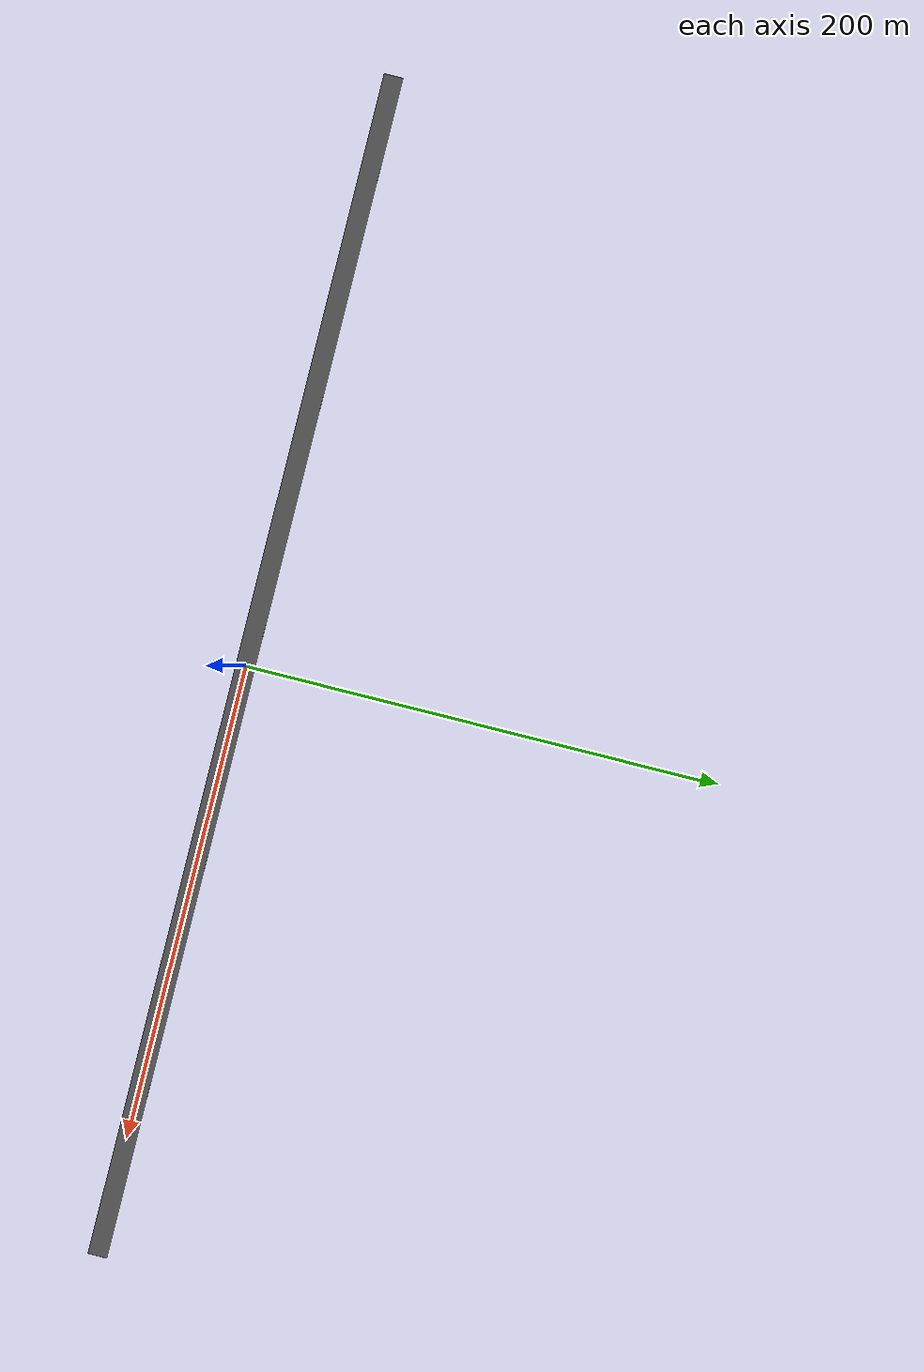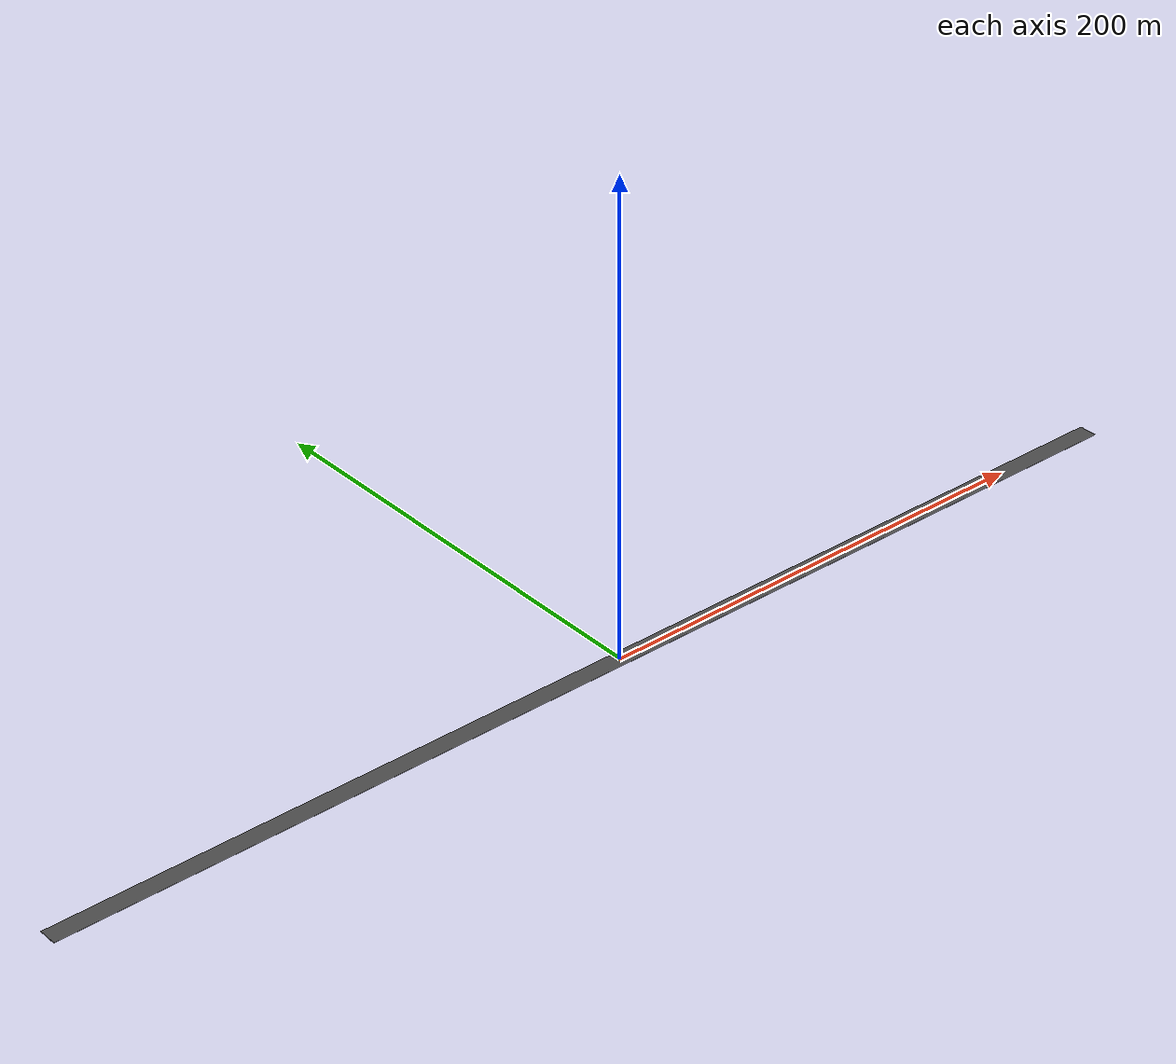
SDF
<?xml version="1.0" ?>
<sdf version="1.5">
  <model name="road">
    <static>true</static>
    <link name="link">
      <visual name="visual">
        <cast_shadows>false</cast_shadows>
        <geometry>
          <box>
            <size>500 8 .1</size>
          </box>
        </geometry>
        <material>
          <script>
            <uri>model://road/materials/scripts</uri>
            <uri>model://road/materials/textures</uri>
            <name>road</name>
          </script>
        </material>
      </visual>
    </link>
  </model>
</sdf>
